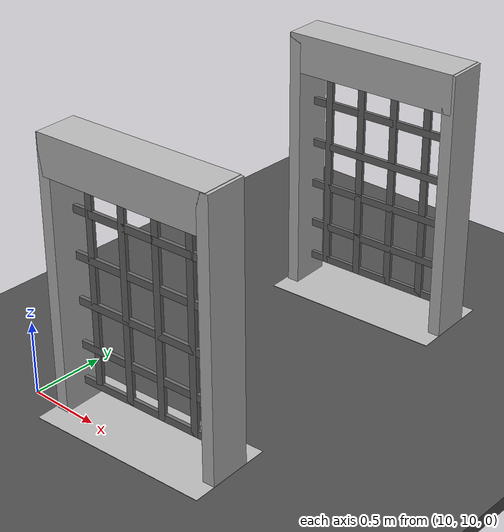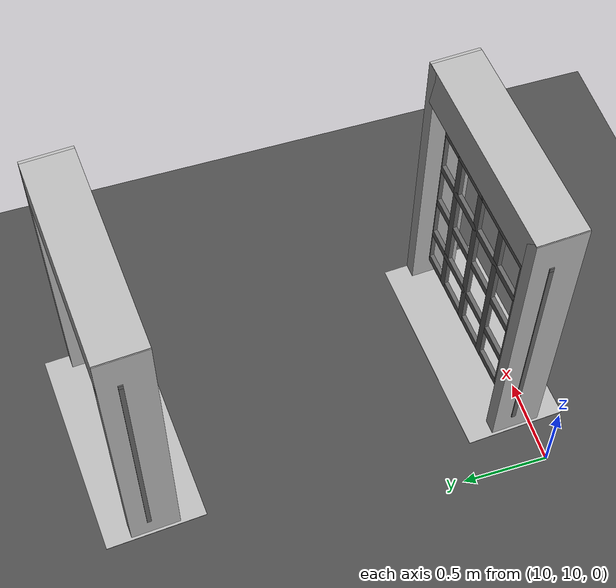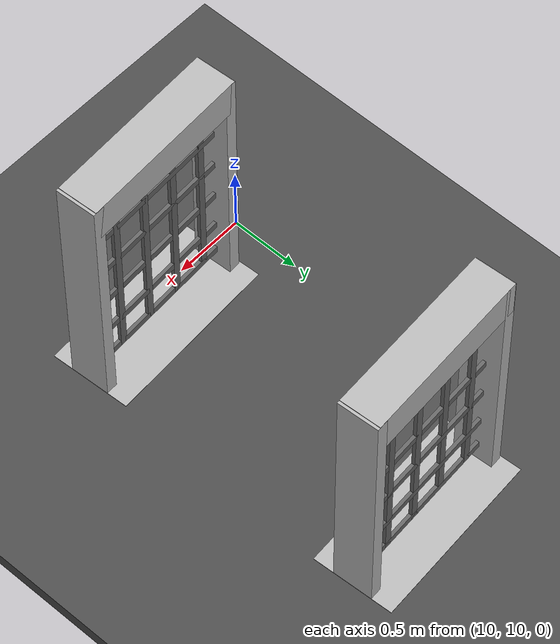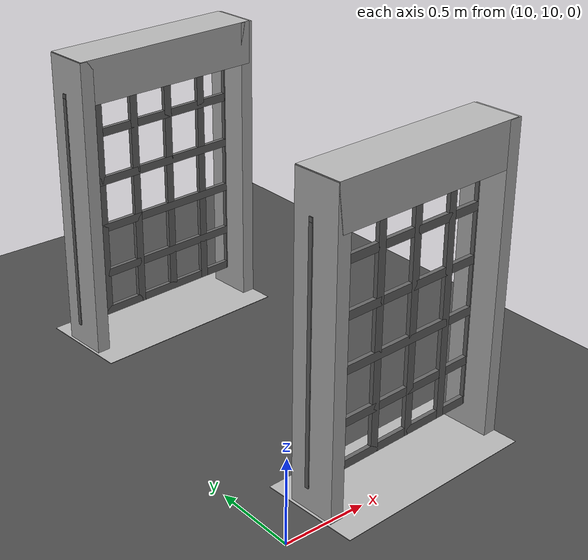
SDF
<sdf version="1.6">
 <world name="default">
  <scene>
   <sky><clouds><speed>12</speed></clouds></sky>
   <ambient>0.4 0.4 0.4 1</ambient>
   <background>0.7 0.7 0.7 1</background>
   <shadows>1</shadows>
  </scene>
  <model name="asphalt_plane">
   <pose>0 0 -0.1 0 -0 0</pose>
   <static>1</static>
   <link name="link">
    <collision name="collision"><geometry><box><size>40 40 0.1</size></box></geometry></collision>
    <visual name="visual">
     <cast_shadows>0</cast_shadows>
     <geometry><box><size>40 40 0.1</size></box></geometry>
     <material>
      <script>
       <uri>model://asphalt_plane/materials/scripts</uri>
       <uri>model://asphalt_plane/materials/textures</uri>
       <name>vrc/asphalt</name>
      </script>
     </material>
    </visual>
   </link>
  </model>
  <light name="sun" type="directional">
   <pose>0 0 10 0 -0 0</pose>
   <diffuse>0.8 0.8 0.8 1</diffuse>
   <specular>0.1 0.1 0.1 1</specular>
   <attenuation>
    <range>1000</range>
    <constant>0.9</constant>
    <linear>0.01</linear>
    <quadratic>0.001</quadratic>
   </attenuation>
   <direction>-0.5 0.5 -1</direction>
  </light>
  <gravity>0 0 -9.8</gravity>
  <magnetic_field>6e-06 2.3e-05 -4.2e-05</magnetic_field>
  <atmosphere type="adiabatic"/>
  <physics name="default_physics" default="0" type="ode">
   <max_step_size>0.001</max_step_size>
   <real_time_factor>1</real_time_factor>
   <real_time_update_rate>1000</real_time_update_rate>
  </physics>
  <spherical_coordinates>
   <surface_model>EARTH_WGS84</surface_model>
   <latitude_deg>0</latitude_deg>
   <longitude_deg>0</longitude_deg>
   <elevation>0</elevation>
   <heading_deg>0</heading_deg>
  </spherical_coordinates>
  <model name="frc2016_portcullis">
   <link name="base">
    <inertial>
     <mass>50</mass>
     <pose>0 0 1.02941 0 -0 0</pose>
     <inertia><ixx>3.81711</ixx><ixy>0</ixy><ixz>0</ixz><iyy>4.87698</iyy><iyz>0</iyz><izz>1.6283</izz></inertia>
    </inertial>
    <visual name="platform">
     <pose>0 0 0.07284 0 -0 0</pose>
     <geometry><box><size>1.27 0.5842 0.003175</size></box></geometry>
    </visual>
    <collision name="platform">
     <pose>0 0 0.07284 0 -0 0</pose>
     <geometry><box><size>1.27 0.5842 0.003175</size></box></geometry>
    </collision>
    <visual name="left_column">
     <pose>0.59284 0 0.99042 0 -0 0</pose>
     <geometry><box><size>0.08375 0.28575 1.83198</size></box></geometry>
    </visual>
    <collision name="left_column">
     <pose>0.59284 0 0.99042 0 -0 0</pose>
     <geometry><box><size>0.08375 0.28575 1.83198</size></box></geometry>
    </collision>
    <visual name="right_column">
     <pose>-0.57759 0 0.99042 0 -0 0</pose>
     <geometry><box><size>0.08375 0.28575 1.83198</size></box></geometry>
    </visual>
    <collision name="right_column">
     <pose>-0.57759 0 0.99042 0 -0 0</pose>
     <geometry><box><size>0.08375 0.28575 1.83198</size></box></geometry>
    </collision>
    <visual name="top">
     <pose>-0.00034 0 1.77722 0 -0 0</pose>
     <geometry><box><size>1.22962 0.28575 0.26657</size></box></geometry>
    </visual>
    <collision name="top">
     <pose>-0.00034 0 1.77722 0 -0 0</pose>
     <geometry><box><size>1.22962 0.28575 0.26657</size></box></geometry>
    </collision>
    <visual name="castor1">
     <pose>-0.45651 -0.16234 0.03272 0 -0 0</pose>
     <geometry><sphere><radius>0.03272</radius></sphere></geometry>
    </visual>
    <collision name="castor1">
     <pose>-0.45651 -0.16234 0.03272 0 -0 0</pose>
     <geometry><sphere><radius>0.03272</radius></sphere></geometry>
    </collision>
    <visual name="castor2">
     <pose>-0.27883 0.21836 0.03272 0 -0 0</pose>
     <geometry><sphere><radius>0.03272</radius></sphere></geometry>
    </visual>
    <collision name="castor2">
     <pose>-0.27883 0.21836 0.03272 0 -0 0</pose>
     <geometry><sphere><radius>0.03272</radius></sphere></geometry>
    </collision>
    <visual name="castor3">
     <pose>0.28083 0.21906 0.03272 0 -0 0</pose>
     <geometry><sphere><radius>0.03272</radius></sphere></geometry>
    </visual>
    <collision name="castor3">
     <pose>0.28083 0.21906 0.03272 0 -0 0</pose>
     <geometry><sphere><radius>0.03272</radius></sphere></geometry>
    </collision>
    <visual name="castor4">
     <pose>0.45871 -0.16186 0.03272 0 -0 0</pose>
     <geometry><sphere><radius>0.03272</radius></sphere></geometry>
    </visual>
    <collision name="castor4">
     <pose>0.45871 -0.16186 0.03272 0 -0 0</pose>
     <geometry><sphere><radius>0.03272</radius></sphere></geometry>
    </collision>
   </link>
   <link name="gate">
    <pose>-0.0287 0.02885 0.93327 0 -0 0</pose>
    <inertial>
     <mass>2</mass>
     <inertia><ixx>3.81711</ixx><ixy>0</ixy><ixz>0</ixz><iyy>4.87698</iyy><iyz>0</iyz><izz>1.6283</izz></inertia>
    </inertial>
    <collision name="collision"><geometry><box><size>1.1938 0.02496 1.45732</size></box></geometry></collision>
    <visual name="horz_1">
     <pose>0 0 -0.70326 0 -0 0</pose>
     <geometry><box><size>1.1938 0.02496 0.0508</size></box></geometry>
     <material><ambient>0.4 0.4 0.4 1</ambient><diffuse>0.4 0.4 0.4 1</diffuse></material>
    </visual>
    <visual name="horz_2">
     <pose>0 0 -0.44926 0 -0 0</pose>
     <geometry><box><size>1.1938 0.02496 0.0508</size></box></geometry>
     <material><ambient>0.4 0.4 0.4 1</ambient><diffuse>0.4 0.4 0.4 1</diffuse></material>
    </visual>
    <visual name="horz_3">
     <pose>0 0 -0.14517 0 -0 0</pose>
     <geometry><box><size>1.1938 0.02496 0.0508</size></box></geometry>
     <material><ambient>0.4 0.4 0.4 1</ambient><diffuse>0.4 0.4 0.4 1</diffuse></material>
    </visual>
    <visual name="horz_4">
     <pose>0 0 0.16034 0 -0 0</pose>
     <geometry><box><size>1.1938 0.02496 0.0508</size></box></geometry>
     <material><ambient>0.4 0.4 0.4 1</ambient><diffuse>0.4 0.4 0.4 1</diffuse></material>
    </visual>
    <visual name="horz_5">
     <pose>0 0 0.46514 0 -0 0</pose>
     <geometry><box><size>1.1938 0.02496 0.0508</size></box></geometry>
     <material><ambient>0.4 0.4 0.4 1</ambient><diffuse>0.4 0.4 0.4 1</diffuse></material>
    </visual>
    <visual name="horz_6">
     <pose>0 0 0.72994 0 -0 0</pose>
     <geometry><box><size>1.1938 0.02496 0.0508</size></box></geometry>
     <material><ambient>0.4 0.4 0.4 1</ambient><diffuse>0.4 0.4 0.4 1</diffuse></material>
    </visual>
    <visual name="vert_1">
     <pose>-0.58448 0 0 0 -0 0</pose>
     <geometry><box><size>0.02495 0.02496 1.45732</size></box></geometry>
     <material><ambient>0.4 0.4 0.4 1</ambient><diffuse>0.4 0.4 0.4 1</diffuse></material>
    </visual>
    <visual name="vert_2">
     <pose>-0.38128 0 0 0 -0 0</pose>
     <geometry><box><size>0.0508 0.02496 1.45732</size></box></geometry>
     <material><ambient>0.4 0.4 0.4 1</ambient><diffuse>0.4 0.4 0.4 1</diffuse></material>
    </visual>
    <visual name="vert_3">
     <pose>-0.12728 0 0 0 -0 0</pose>
     <geometry><box><size>0.0508 0.02496 1.45732</size></box></geometry>
     <material><ambient>0.4 0.4 0.4 1</ambient><diffuse>0.4 0.4 0.4 1</diffuse></material>
    </visual>
    <visual name="vert_4">
     <pose>0.12672 0 0 0 -0 0</pose>
     <geometry><box><size>0.0508 0.02496 1.45732</size></box></geometry>
     <material><ambient>0.4 0.4 0.4 1</ambient><diffuse>0.4 0.4 0.4 1</diffuse></material>
    </visual>
    <visual name="vert_5">
     <pose>0.38072 0 0 0 -0 0</pose>
     <geometry><box><size>0.0508 0.02496 1.45732</size></box></geometry>
     <material><ambient>0.4 0.4 0.4 1</ambient><diffuse>0.4 0.4 0.4 1</diffuse></material>
    </visual>
    <visual name="vert_6">
     <pose>0.58392 0 0 0 -0 0</pose>
     <geometry><box><size>0.02495 0.02496 1.45732</size></box></geometry>
     <material><ambient>0.4 0.4 0.4 1</ambient><diffuse>0.4 0.4 0.4 1</diffuse></material>
    </visual>
   </link>
   <joint name="joint" type="prismatic">
    <parent>base</parent>
    <child>gate</child>
    <axis>
     <xyz>0 0 1</xyz>
     <limit><lower>0</lower><upper>1</upper></limit>
     <use_parent_model_frame>0</use_parent_model_frame>
     <dynamics><spring_reference>0</spring_reference><spring_stiffness>0</spring_stiffness></dynamics>
    </axis>
   </joint>
   <pose>10.858 10.1299 -0.050006 -2e-06 -3e-06 0.053971</pose>
  </model>
  <model name="frc2016_portcullis_0">
   <link name="base">
    <inertial>
     <mass>50</mass>
     <pose>0 0 1.02941 0 -0 0</pose>
     <inertia><ixx>3.81711</ixx><ixy>0</ixy><ixz>0</ixz><iyy>4.87698</iyy><iyz>0</iyz><izz>1.6283</izz></inertia>
    </inertial>
    <visual name="platform">
     <pose>0 0 0.07284 0 -0 0</pose>
     <geometry><box><size>1.27 0.5842 0.003175</size></box></geometry>
    </visual>
    <collision name="platform">
     <pose>0 0 0.07284 0 -0 0</pose>
     <geometry><box><size>1.27 0.5842 0.003175</size></box></geometry>
    </collision>
    <visual name="left_column">
     <pose>0.59284 0 0.99042 0 -0 0</pose>
     <geometry><box><size>0.08375 0.28575 1.83198</size></box></geometry>
    </visual>
    <collision name="left_column">
     <pose>0.59284 0 0.99042 0 -0 0</pose>
     <geometry><box><size>0.08375 0.28575 1.83198</size></box></geometry>
    </collision>
    <visual name="right_column">
     <pose>-0.57759 0 0.99042 0 -0 0</pose>
     <geometry><box><size>0.08375 0.28575 1.83198</size></box></geometry>
    </visual>
    <collision name="right_column">
     <pose>-0.57759 0 0.99042 0 -0 0</pose>
     <geometry><box><size>0.08375 0.28575 1.83198</size></box></geometry>
    </collision>
    <visual name="top">
     <pose>-0.00034 0 1.77722 0 -0 0</pose>
     <geometry><box><size>1.22962 0.28575 0.26657</size></box></geometry>
    </visual>
    <collision name="top">
     <pose>-0.00034 0 1.77722 0 -0 0</pose>
     <geometry><box><size>1.22962 0.28575 0.26657</size></box></geometry>
    </collision>
    <visual name="castor1">
     <pose>-0.45651 -0.16234 0.03272 0 -0 0</pose>
     <geometry><sphere><radius>0.03272</radius></sphere></geometry>
    </visual>
    <collision name="castor1">
     <pose>-0.45651 -0.16234 0.03272 0 -0 0</pose>
     <geometry><sphere><radius>0.03272</radius></sphere></geometry>
    </collision>
    <visual name="castor2">
     <pose>-0.27883 0.21836 0.03272 0 -0 0</pose>
     <geometry><sphere><radius>0.03272</radius></sphere></geometry>
    </visual>
    <collision name="castor2">
     <pose>-0.27883 0.21836 0.03272 0 -0 0</pose>
     <geometry><sphere><radius>0.03272</radius></sphere></geometry>
    </collision>
    <visual name="castor3">
     <pose>0.28083 0.21906 0.03272 0 -0 0</pose>
     <geometry><sphere><radius>0.03272</radius></sphere></geometry>
    </visual>
    <collision name="castor3">
     <pose>0.28083 0.21906 0.03272 0 -0 0</pose>
     <geometry><sphere><radius>0.03272</radius></sphere></geometry>
    </collision>
    <visual name="castor4">
     <pose>0.45871 -0.16186 0.03272 0 -0 0</pose>
     <geometry><sphere><radius>0.03272</radius></sphere></geometry>
    </visual>
    <collision name="castor4">
     <pose>0.45871 -0.16186 0.03272 0 -0 0</pose>
     <geometry><sphere><radius>0.03272</radius></sphere></geometry>
    </collision>
   </link>
   <link name="gate">
    <pose>-0.0287 0.02885 0.93327 0 -0 0</pose>
    <inertial>
     <mass>2</mass>
     <inertia><ixx>3.81711</ixx><ixy>0</ixy><ixz>0</ixz><iyy>4.87698</iyy><iyz>0</iyz><izz>1.6283</izz></inertia>
    </inertial>
    <collision name="collision"><geometry><box><size>1.1938 0.02496 1.45732</size></box></geometry></collision>
    <visual name="horz_1">
     <pose>0 0 -0.70326 0 -0 0</pose>
     <geometry><box><size>1.1938 0.02496 0.0508</size></box></geometry>
     <material><ambient>0.4 0.4 0.4 1</ambient><diffuse>0.4 0.4 0.4 1</diffuse></material>
    </visual>
    <visual name="horz_2">
     <pose>0 0 -0.44926 0 -0 0</pose>
     <geometry><box><size>1.1938 0.02496 0.0508</size></box></geometry>
     <material><ambient>0.4 0.4 0.4 1</ambient><diffuse>0.4 0.4 0.4 1</diffuse></material>
    </visual>
    <visual name="horz_3">
     <pose>0 0 -0.14517 0 -0 0</pose>
     <geometry><box><size>1.1938 0.02496 0.0508</size></box></geometry>
     <material><ambient>0.4 0.4 0.4 1</ambient><diffuse>0.4 0.4 0.4 1</diffuse></material>
    </visual>
    <visual name="horz_4">
     <pose>0 0 0.16034 0 -0 0</pose>
     <geometry><box><size>1.1938 0.02496 0.0508</size></box></geometry>
     <material><ambient>0.4 0.4 0.4 1</ambient><diffuse>0.4 0.4 0.4 1</diffuse></material>
    </visual>
    <visual name="horz_5">
     <pose>0 0 0.46514 0 -0 0</pose>
     <geometry><box><size>1.1938 0.02496 0.0508</size></box></geometry>
     <material><ambient>0.4 0.4 0.4 1</ambient><diffuse>0.4 0.4 0.4 1</diffuse></material>
    </visual>
    <visual name="horz_6">
     <pose>0 0 0.72994 0 -0 0</pose>
     <geometry><box><size>1.1938 0.02496 0.0508</size></box></geometry>
     <material><ambient>0.4 0.4 0.4 1</ambient><diffuse>0.4 0.4 0.4 1</diffuse></material>
    </visual>
    <visual name="vert_1">
     <pose>-0.58448 0 0 0 -0 0</pose>
     <geometry><box><size>0.02495 0.02496 1.45732</size></box></geometry>
     <material><ambient>0.4 0.4 0.4 1</ambient><diffuse>0.4 0.4 0.4 1</diffuse></material>
    </visual>
    <visual name="vert_2">
     <pose>-0.38128 0 0 0 -0 0</pose>
     <geometry><box><size>0.0508 0.02496 1.45732</size></box></geometry>
     <material><ambient>0.4 0.4 0.4 1</ambient><diffuse>0.4 0.4 0.4 1</diffuse></material>
    </visual>
    <visual name="vert_3">
     <pose>-0.12728 0 0 0 -0 0</pose>
     <geometry><box><size>0.0508 0.02496 1.45732</size></box></geometry>
     <material><ambient>0.4 0.4 0.4 1</ambient><diffuse>0.4 0.4 0.4 1</diffuse></material>
    </visual>
    <visual name="vert_4">
     <pose>0.12672 0 0 0 -0 0</pose>
     <geometry><box><size>0.0508 0.02496 1.45732</size></box></geometry>
     <material><ambient>0.4 0.4 0.4 1</ambient><diffuse>0.4 0.4 0.4 1</diffuse></material>
    </visual>
    <visual name="vert_5">
     <pose>0.38072 0 0 0 -0 0</pose>
     <geometry><box><size>0.0508 0.02496 1.45732</size></box></geometry>
     <material><ambient>0.4 0.4 0.4 1</ambient><diffuse>0.4 0.4 0.4 1</diffuse></material>
    </visual>
    <visual name="vert_6">
     <pose>0.58392 0 0 0 -0 0</pose>
     <geometry><box><size>0.02495 0.02496 1.45732</size></box></geometry>
     <material><ambient>0.4 0.4 0.4 1</ambient><diffuse>0.4 0.4 0.4 1</diffuse></material>
    </visual>
   </link>
   <joint name="joint" type="prismatic">
    <parent>base</parent>
    <child>gate</child>
    <axis>
     <xyz>0 0 1</xyz>
     <limit><lower>0</lower><upper>1</upper></limit>
     <use_parent_model_frame>0</use_parent_model_frame>
     <dynamics><spring_reference>0</spring_reference><spring_stiffness>0</spring_stiffness></dynamics>
    </axis>
   </joint>
   <pose>10.8528 12.2726 -0.050001 1e-06 3e-06 0.060226</pose>
  </model>
 </world>
</sdf>
